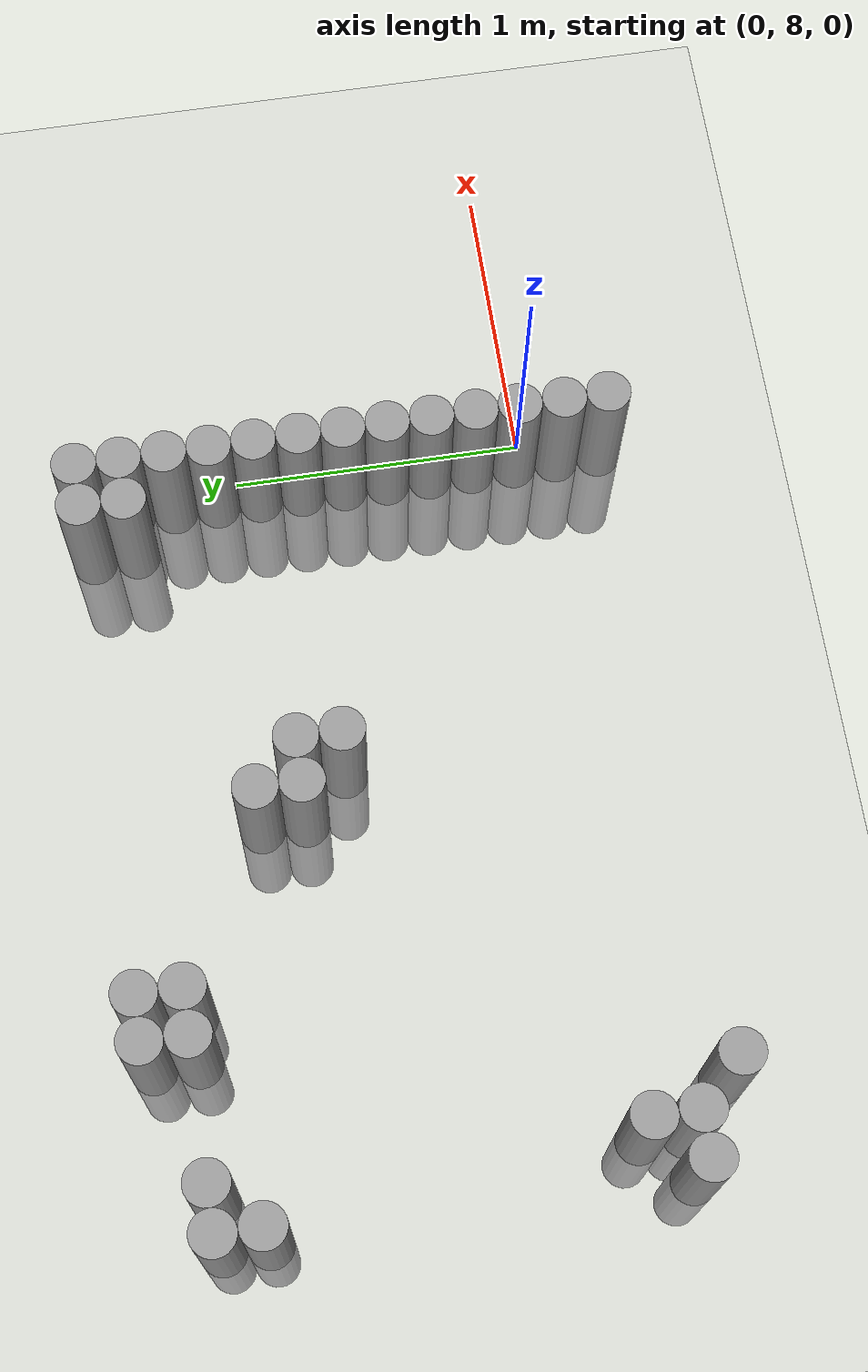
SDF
<sdf version="1.6">
 <world name="default">
  <model name="ground_plane">
   <static>1</static>
   <static>1</static>
   <link name="link">
    <collision name="collision">
     <geometry><plane><normal>0 0 1</normal><size>100 100</size></plane></geometry>
     <surface><friction><ode><mu>100</mu><mu2>50</mu2></ode></friction></surface>
    </collision>
    <visual name="visual">
     <cast_shadows>0</cast_shadows>
     <geometry><plane><normal>0 0 1</normal><size>100 100</size></plane></geometry>
     <material>
      <script><uri>file://media/materials/scripts/gazebo.material</uri><name>Gazebo/Grey</name></script>
     </material>
    </visual>
   </link>
  </model>
  <model name="unit_cylinder_171">
   <static>1</static>
   <pose>-2.625000 7.875000 0.000000 0.000000 0.000000 0.000000</pose>
   <link name="link">
    <inertial>
     <mass>1</mass>
     <inertia><ixx>0.145833</ixx><ixy>0</ixy><ixz>0</ixz><iyy>0.145833</iyy><iyz>0</iyz><izz>0.125</izz></inertia>
    </inertial>
    <collision name="collision">
     <geometry><cylinder><radius>0.075000</radius><length>1</length></cylinder></geometry>
    </collision>
    <visual name="visual">
     <geometry><cylinder><radius>0.075000</radius><length>1</length></cylinder></geometry>
     <material>
      <script><name>Gazebo/Grey</name><uri>file://media/materials/scripts/gazebo.material</uri></script>
     </material>
    </visual>
   </link>
  </model>
  <model name="unit_cylinder_172">
   <static>1</static>
   <pose>-2.625000 9.225000 0.000000 0.000000 0.000000 0.000000</pose>
   <link name="link">
    <inertial>
     <mass>1</mass>
     <inertia><ixx>0.145833</ixx><ixy>0</ixy><ixz>0</ixz><iyy>0.145833</iyy><iyz>0</iyz><izz>0.125</izz></inertia>
    </inertial>
    <collision name="collision">
     <geometry><cylinder><radius>0.075000</radius><length>1</length></cylinder></geometry>
    </collision>
    <visual name="visual">
     <geometry><cylinder><radius>0.075000</radius><length>1</length></cylinder></geometry>
     <material>
      <script><name>Gazebo/Grey</name><uri>file://media/materials/scripts/gazebo.material</uri></script>
     </material>
    </visual>
   </link>
  </model>
  <model name="unit_cylinder_173">
   <static>1</static>
   <pose>-2.625000 9.375000 0.000000 0.000000 0.000000 0.000000</pose>
   <link name="link">
    <inertial>
     <mass>1</mass>
     <inertia><ixx>0.145833</ixx><ixy>0</ixy><ixz>0</ixz><iyy>0.145833</iyy><iyz>0</iyz><izz>0.125</izz></inertia>
    </inertial>
    <collision name="collision">
     <geometry><cylinder><radius>0.075000</radius><length>1</length></cylinder></geometry>
    </collision>
    <visual name="visual">
     <geometry><cylinder><radius>0.075000</radius><length>1</length></cylinder></geometry>
     <material>
      <script><name>Gazebo/Grey</name><uri>file://media/materials/scripts/gazebo.material</uri></script>
     </material>
    </visual>
   </link>
  </model>
  <model name="unit_cylinder_176">
   <static>1</static>
   <pose>-2.475000 7.875000 0.000000 0.000000 0.000000 0.000000</pose>
   <link name="link">
    <inertial>
     <mass>1</mass>
     <inertia><ixx>0.145833</ixx><ixy>0</ixy><ixz>0</ixz><iyy>0.145833</iyy><iyz>0</iyz><izz>0.125</izz></inertia>
    </inertial>
    <collision name="collision">
     <geometry><cylinder><radius>0.075000</radius><length>1</length></cylinder></geometry>
    </collision>
    <visual name="visual">
     <geometry><cylinder><radius>0.075000</radius><length>1</length></cylinder></geometry>
     <material>
      <script><name>Gazebo/Grey</name><uri>file://media/materials/scripts/gazebo.material</uri></script>
     </material>
    </visual>
   </link>
  </model>
  <model name="unit_cylinder_177">
   <static>1</static>
   <pose>-2.475000 8.025000 0.000000 0.000000 0.000000 0.000000</pose>
   <link name="link">
    <inertial>
     <mass>1</mass>
     <inertia><ixx>0.145833</ixx><ixy>0</ixy><ixz>0</ixz><iyy>0.145833</iyy><iyz>0</iyz><izz>0.125</izz></inertia>
    </inertial>
    <collision name="collision">
     <geometry><cylinder><radius>0.075000</radius><length>1</length></cylinder></geometry>
    </collision>
    <visual name="visual">
     <geometry><cylinder><radius>0.075000</radius><length>1</length></cylinder></geometry>
     <material>
      <script><name>Gazebo/Grey</name><uri>file://media/materials/scripts/gazebo.material</uri></script>
     </material>
    </visual>
   </link>
  </model>
  <model name="unit_cylinder_178">
   <static>1</static>
   <pose>-2.475000 9.375000 0.000000 0.000000 0.000000 0.000000</pose>
   <link name="link">
    <inertial>
     <mass>1</mass>
     <inertia><ixx>0.145833</ixx><ixy>0</ixy><ixz>0</ixz><iyy>0.145833</iyy><iyz>0</iyz><izz>0.125</izz></inertia>
    </inertial>
    <collision name="collision">
     <geometry><cylinder><radius>0.075000</radius><length>1</length></cylinder></geometry>
    </collision>
    <visual name="visual">
     <geometry><cylinder><radius>0.075000</radius><length>1</length></cylinder></geometry>
     <material>
      <script><name>Gazebo/Grey</name><uri>file://media/materials/scripts/gazebo.material</uri></script>
     </material>
    </visual>
   </link>
  </model>
  <model name="unit_cylinder_180">
   <static>1</static>
   <pose>-2.325000 7.725000 0.000000 0.000000 0.000000 0.000000</pose>
   <link name="link">
    <inertial>
     <mass>1</mass>
     <inertia><ixx>0.145833</ixx><ixy>0</ixy><ixz>0</ixz><iyy>0.145833</iyy><iyz>0</iyz><izz>0.125</izz></inertia>
    </inertial>
    <collision name="collision">
     <geometry><cylinder><radius>0.075000</radius><length>1</length></cylinder></geometry>
    </collision>
    <visual name="visual">
     <geometry><cylinder><radius>0.075000</radius><length>1</length></cylinder></geometry>
     <material>
      <script><name>Gazebo/Grey</name><uri>file://media/materials/scripts/gazebo.material</uri></script>
     </material>
    </visual>
   </link>
  </model>
  <model name="unit_cylinder_184">
   <static>1</static>
   <pose>-2.025000 9.375000 0.000000 0.000000 0.000000 0.000000</pose>
   <link name="link">
    <inertial>
     <mass>1</mass>
     <inertia><ixx>0.145833</ixx><ixy>0</ixy><ixz>0</ixz><iyy>0.145833</iyy><iyz>0</iyz><izz>0.125</izz></inertia>
    </inertial>
    <collision name="collision">
     <geometry><cylinder><radius>0.075000</radius><length>1</length></cylinder></geometry>
    </collision>
    <visual name="visual">
     <geometry><cylinder><radius>0.075000</radius><length>1</length></cylinder></geometry>
     <material>
      <script><name>Gazebo/Grey</name><uri>file://media/materials/scripts/gazebo.material</uri></script>
     </material>
    </visual>
   </link>
  </model>
  <model name="unit_cylinder_185">
   <static>1</static>
   <pose>-2.025000 9.525000 0.000000 0.000000 0.000000 0.000000</pose>
   <link name="link">
    <inertial>
     <mass>1</mass>
     <inertia><ixx>0.145833</ixx><ixy>0</ixy><ixz>0</ixz><iyy>0.145833</iyy><iyz>0</iyz><izz>0.125</izz></inertia>
    </inertial>
    <collision name="collision">
     <geometry><cylinder><radius>0.075000</radius><length>1</length></cylinder></geometry>
    </collision>
    <visual name="visual">
     <geometry><cylinder><radius>0.075000</radius><length>1</length></cylinder></geometry>
     <material>
      <script><name>Gazebo/Grey</name><uri>file://media/materials/scripts/gazebo.material</uri></script>
     </material>
    </visual>
   </link>
  </model>
  <model name="unit_cylinder_187">
   <static>1</static>
   <pose>-1.875000 9.375000 0.000000 0.000000 0.000000 0.000000</pose>
   <link name="link">
    <inertial>
     <mass>1</mass>
     <inertia><ixx>0.145833</ixx><ixy>0</ixy><ixz>0</ixz><iyy>0.145833</iyy><iyz>0</iyz><izz>0.125</izz></inertia>
    </inertial>
    <collision name="collision">
     <geometry><cylinder><radius>0.075000</radius><length>1</length></cylinder></geometry>
    </collision>
    <visual name="visual">
     <geometry><cylinder><radius>0.075000</radius><length>1</length></cylinder></geometry>
     <material>
      <script><name>Gazebo/Grey</name><uri>file://media/materials/scripts/gazebo.material</uri></script>
     </material>
    </visual>
   </link>
  </model>
  <model name="unit_cylinder_188">
   <static>1</static>
   <pose>-1.875000 9.525000 0.000000 0.000000 0.000000 0.000000</pose>
   <link name="link">
    <inertial>
     <mass>1</mass>
     <inertia><ixx>0.145833</ixx><ixy>0</ixy><ixz>0</ixz><iyy>0.145833</iyy><iyz>0</iyz><izz>0.125</izz></inertia>
    </inertial>
    <collision name="collision">
     <geometry><cylinder><radius>0.075000</radius><length>1</length></cylinder></geometry>
    </collision>
    <visual name="visual">
     <geometry><cylinder><radius>0.075000</radius><length>1</length></cylinder></geometry>
     <material>
      <script><name>Gazebo/Grey</name><uri>file://media/materials/scripts/gazebo.material</uri></script>
     </material>
    </visual>
   </link>
  </model>
  <model name="unit_cylinder_189">
   <static>1</static>
   <pose>-1.275000 8.925000 0.000000 0.000000 0.000000 0.000000</pose>
   <link name="link">
    <inertial>
     <mass>1</mass>
     <inertia><ixx>0.145833</ixx><ixy>0</ixy><ixz>0</ixz><iyy>0.145833</iyy><iyz>0</iyz><izz>0.125</izz></inertia>
    </inertial>
    <collision name="collision">
     <geometry><cylinder><radius>0.075000</radius><length>1</length></cylinder></geometry>
    </collision>
    <visual name="visual">
     <geometry><cylinder><radius>0.075000</radius><length>1</length></cylinder></geometry>
     <material>
      <script><name>Gazebo/Grey</name><uri>file://media/materials/scripts/gazebo.material</uri></script>
     </material>
    </visual>
   </link>
  </model>
  <model name="unit_cylinder_190">
   <static>1</static>
   <pose>-1.275000 9.075000 0.000000 0.000000 0.000000 0.000000</pose>
   <link name="link">
    <inertial>
     <mass>1</mass>
     <inertia><ixx>0.145833</ixx><ixy>0</ixy><ixz>0</ixz><iyy>0.145833</iyy><iyz>0</iyz><izz>0.125</izz></inertia>
    </inertial>
    <collision name="collision">
     <geometry><cylinder><radius>0.075000</radius><length>1</length></cylinder></geometry>
    </collision>
    <visual name="visual">
     <geometry><cylinder><radius>0.075000</radius><length>1</length></cylinder></geometry>
     <material>
      <script><name>Gazebo/Grey</name><uri>file://media/materials/scripts/gazebo.material</uri></script>
     </material>
    </visual>
   </link>
  </model>
  <model name="unit_cylinder_191">
   <static>1</static>
   <pose>-1.125000 8.775000 0.000000 0.000000 0.000000 0.000000</pose>
   <link name="link">
    <inertial>
     <mass>1</mass>
     <inertia><ixx>0.145833</ixx><ixy>0</ixy><ixz>0</ixz><iyy>0.145833</iyy><iyz>0</iyz><izz>0.125</izz></inertia>
    </inertial>
    <collision name="collision">
     <geometry><cylinder><radius>0.075000</radius><length>1</length></cylinder></geometry>
    </collision>
    <visual name="visual">
     <geometry><cylinder><radius>0.075000</radius><length>1</length></cylinder></geometry>
     <material>
      <script><name>Gazebo/Grey</name><uri>file://media/materials/scripts/gazebo.material</uri></script>
     </material>
    </visual>
   </link>
  </model>
  <model name="unit_cylinder_192">
   <static>1</static>
   <pose>-1.125000 8.925000 0.000000 0.000000 0.000000 0.000000</pose>
   <link name="link">
    <inertial>
     <mass>1</mass>
     <inertia><ixx>0.145833</ixx><ixy>0</ixy><ixz>0</ixz><iyy>0.145833</iyy><iyz>0</iyz><izz>0.125</izz></inertia>
    </inertial>
    <collision name="collision">
     <geometry><cylinder><radius>0.075000</radius><length>1</length></cylinder></geometry>
    </collision>
    <visual name="visual">
     <geometry><cylinder><radius>0.075000</radius><length>1</length></cylinder></geometry>
     <material>
      <script><name>Gazebo/Grey</name><uri>file://media/materials/scripts/gazebo.material</uri></script>
     </material>
    </visual>
   </link>
  </model>
  <model name="unit_cylinder_208">
   <static>1</static>
   <pose>-0.225000 9.375000 0.000000 0.000000 0.000000 0.000000</pose>
   <link name="link">
    <inertial>
     <mass>1</mass>
     <inertia><ixx>0.145833</ixx><ixy>0</ixy><ixz>0</ixz><iyy>0.145833</iyy><iyz>0</iyz><izz>0.125</izz></inertia>
    </inertial>
    <collision name="collision">
     <geometry><cylinder><radius>0.075000</radius><length>1</length></cylinder></geometry>
    </collision>
    <visual name="visual">
     <geometry><cylinder><radius>0.075000</radius><length>1</length></cylinder></geometry>
     <material>
      <script><name>Gazebo/Grey</name><uri>file://media/materials/scripts/gazebo.material</uri></script>
     </material>
    </visual>
   </link>
  </model>
  <model name="unit_cylinder_209">
   <static>1</static>
   <pose>-0.225000 9.525000 0.000000 0.000000 0.000000 0.000000</pose>
   <link name="link">
    <inertial>
     <mass>1</mass>
     <inertia><ixx>0.145833</ixx><ixy>0</ixy><ixz>0</ixz><iyy>0.145833</iyy><iyz>0</iyz><izz>0.125</izz></inertia>
    </inertial>
    <collision name="collision">
     <geometry><cylinder><radius>0.075000</radius><length>1</length></cylinder></geometry>
    </collision>
    <visual name="visual">
     <geometry><cylinder><radius>0.075000</radius><length>1</length></cylinder></geometry>
     <material>
      <script><name>Gazebo/Grey</name><uri>file://media/materials/scripts/gazebo.material</uri></script>
     </material>
    </visual>
   </link>
  </model>
  <model name="unit_cylinder_227">
   <static>1</static>
   <pose>-0.075000 7.725000 0.000000 0.000000 0.000000 0.000000</pose>
   <link name="link">
    <inertial>
     <mass>1</mass>
     <inertia><ixx>0.145833</ixx><ixy>0</ixy><ixz>0</ixz><iyy>0.145833</iyy><iyz>0</iyz><izz>0.125</izz></inertia>
    </inertial>
    <collision name="collision">
     <geometry><cylinder><radius>0.075000</radius><length>1</length></cylinder></geometry>
    </collision>
    <visual name="visual">
     <geometry><cylinder><radius>0.075000</radius><length>1</length></cylinder></geometry>
     <material>
      <script><name>Gazebo/Grey</name><uri>file://media/materials/scripts/gazebo.material</uri></script>
     </material>
    </visual>
   </link>
  </model>
  <model name="unit_cylinder_228">
   <static>1</static>
   <pose>-0.075000 7.875000 0.000000 0.000000 0.000000 0.000000</pose>
   <link name="link">
    <inertial>
     <mass>1</mass>
     <inertia><ixx>0.145833</ixx><ixy>0</ixy><ixz>0</ixz><iyy>0.145833</iyy><iyz>0</iyz><izz>0.125</izz></inertia>
    </inertial>
    <collision name="collision">
     <geometry><cylinder><radius>0.075000</radius><length>1</length></cylinder></geometry>
    </collision>
    <visual name="visual">
     <geometry><cylinder><radius>0.075000</radius><length>1</length></cylinder></geometry>
     <material>
      <script><name>Gazebo/Grey</name><uri>file://media/materials/scripts/gazebo.material</uri></script>
     </material>
    </visual>
   </link>
  </model>
  <model name="unit_cylinder_229">
   <static>1</static>
   <pose>-0.075000 8.025000 0.000000 0.000000 0.000000 0.000000</pose>
   <link name="link">
    <inertial>
     <mass>1</mass>
     <inertia><ixx>0.145833</ixx><ixy>0</ixy><ixz>0</ixz><iyy>0.145833</iyy><iyz>0</iyz><izz>0.125</izz></inertia>
    </inertial>
    <collision name="collision">
     <geometry><cylinder><radius>0.075000</radius><length>1</length></cylinder></geometry>
    </collision>
    <visual name="visual">
     <geometry><cylinder><radius>0.075000</radius><length>1</length></cylinder></geometry>
     <material>
      <script><name>Gazebo/Grey</name><uri>file://media/materials/scripts/gazebo.material</uri></script>
     </material>
    </visual>
   </link>
  </model>
  <model name="unit_cylinder_230">
   <static>1</static>
   <pose>-0.075000 8.175000 0.000000 0.000000 0.000000 0.000000</pose>
   <link name="link">
    <inertial>
     <mass>1</mass>
     <inertia><ixx>0.145833</ixx><ixy>0</ixy><ixz>0</ixz><iyy>0.145833</iyy><iyz>0</iyz><izz>0.125</izz></inertia>
    </inertial>
    <collision name="collision">
     <geometry><cylinder><radius>0.075000</radius><length>1</length></cylinder></geometry>
    </collision>
    <visual name="visual">
     <geometry><cylinder><radius>0.075000</radius><length>1</length></cylinder></geometry>
     <material>
      <script><name>Gazebo/Grey</name><uri>file://media/materials/scripts/gazebo.material</uri></script>
     </material>
    </visual>
   </link>
  </model>
  <model name="unit_cylinder_231">
   <static>1</static>
   <pose>-0.075000 8.325000 0.000000 0.000000 0.000000 0.000000</pose>
   <link name="link">
    <inertial>
     <mass>1</mass>
     <inertia><ixx>0.145833</ixx><ixy>0</ixy><ixz>0</ixz><iyy>0.145833</iyy><iyz>0</iyz><izz>0.125</izz></inertia>
    </inertial>
    <collision name="collision">
     <geometry><cylinder><radius>0.075000</radius><length>1</length></cylinder></geometry>
    </collision>
    <visual name="visual">
     <geometry><cylinder><radius>0.075000</radius><length>1</length></cylinder></geometry>
     <material>
      <script><name>Gazebo/Grey</name><uri>file://media/materials/scripts/gazebo.material</uri></script>
     </material>
    </visual>
   </link>
  </model>
  <model name="unit_cylinder_232">
   <static>1</static>
   <pose>-0.075000 8.475000 0.000000 0.000000 0.000000 0.000000</pose>
   <link name="link">
    <inertial>
     <mass>1</mass>
     <inertia><ixx>0.145833</ixx><ixy>0</ixy><ixz>0</ixz><iyy>0.145833</iyy><iyz>0</iyz><izz>0.125</izz></inertia>
    </inertial>
    <collision name="collision">
     <geometry><cylinder><radius>0.075000</radius><length>1</length></cylinder></geometry>
    </collision>
    <visual name="visual">
     <geometry><cylinder><radius>0.075000</radius><length>1</length></cylinder></geometry>
     <material>
      <script><name>Gazebo/Grey</name><uri>file://media/materials/scripts/gazebo.material</uri></script>
     </material>
    </visual>
   </link>
  </model>
  <model name="unit_cylinder_233">
   <static>1</static>
   <pose>-0.075000 8.625000 0.000000 0.000000 0.000000 0.000000</pose>
   <link name="link">
    <inertial>
     <mass>1</mass>
     <inertia><ixx>0.145833</ixx><ixy>0</ixy><ixz>0</ixz><iyy>0.145833</iyy><iyz>0</iyz><izz>0.125</izz></inertia>
    </inertial>
    <collision name="collision">
     <geometry><cylinder><radius>0.075000</radius><length>1</length></cylinder></geometry>
    </collision>
    <visual name="visual">
     <geometry><cylinder><radius>0.075000</radius><length>1</length></cylinder></geometry>
     <material>
      <script><name>Gazebo/Grey</name><uri>file://media/materials/scripts/gazebo.material</uri></script>
     </material>
    </visual>
   </link>
  </model>
  <model name="unit_cylinder_234">
   <static>1</static>
   <pose>-0.075000 8.775000 0.000000 0.000000 0.000000 0.000000</pose>
   <link name="link">
    <inertial>
     <mass>1</mass>
     <inertia><ixx>0.145833</ixx><ixy>0</ixy><ixz>0</ixz><iyy>0.145833</iyy><iyz>0</iyz><izz>0.125</izz></inertia>
    </inertial>
    <collision name="collision">
     <geometry><cylinder><radius>0.075000</radius><length>1</length></cylinder></geometry>
    </collision>
    <visual name="visual">
     <geometry><cylinder><radius>0.075000</radius><length>1</length></cylinder></geometry>
     <material>
      <script><name>Gazebo/Grey</name><uri>file://media/materials/scripts/gazebo.material</uri></script>
     </material>
    </visual>
   </link>
  </model>
  <model name="unit_cylinder_235">
   <static>1</static>
   <pose>-0.075000 8.925000 0.000000 0.000000 0.000000 0.000000</pose>
   <link name="link">
    <inertial>
     <mass>1</mass>
     <inertia><ixx>0.145833</ixx><ixy>0</ixy><ixz>0</ixz><iyy>0.145833</iyy><iyz>0</iyz><izz>0.125</izz></inertia>
    </inertial>
    <collision name="collision">
     <geometry><cylinder><radius>0.075000</radius><length>1</length></cylinder></geometry>
    </collision>
    <visual name="visual">
     <geometry><cylinder><radius>0.075000</radius><length>1</length></cylinder></geometry>
     <material>
      <script><name>Gazebo/Grey</name><uri>file://media/materials/scripts/gazebo.material</uri></script>
     </material>
    </visual>
   </link>
  </model>
  <model name="unit_cylinder_236">
   <static>1</static>
   <pose>-0.075000 9.075000 0.000000 0.000000 0.000000 0.000000</pose>
   <link name="link">
    <inertial>
     <mass>1</mass>
     <inertia><ixx>0.145833</ixx><ixy>0</ixy><ixz>0</ixz><iyy>0.145833</iyy><iyz>0</iyz><izz>0.125</izz></inertia>
    </inertial>
    <collision name="collision">
     <geometry><cylinder><radius>0.075000</radius><length>1</length></cylinder></geometry>
    </collision>
    <visual name="visual">
     <geometry><cylinder><radius>0.075000</radius><length>1</length></cylinder></geometry>
     <material>
      <script><name>Gazebo/Grey</name><uri>file://media/materials/scripts/gazebo.material</uri></script>
     </material>
    </visual>
   </link>
  </model>
  <model name="unit_cylinder_237">
   <static>1</static>
   <pose>-0.075000 9.225000 0.000000 0.000000 0.000000 0.000000</pose>
   <link name="link">
    <inertial>
     <mass>1</mass>
     <inertia><ixx>0.145833</ixx><ixy>0</ixy><ixz>0</ixz><iyy>0.145833</iyy><iyz>0</iyz><izz>0.125</izz></inertia>
    </inertial>
    <collision name="collision">
     <geometry><cylinder><radius>0.075000</radius><length>1</length></cylinder></geometry>
    </collision>
    <visual name="visual">
     <geometry><cylinder><radius>0.075000</radius><length>1</length></cylinder></geometry>
     <material>
      <script><name>Gazebo/Grey</name><uri>file://media/materials/scripts/gazebo.material</uri></script>
     </material>
    </visual>
   </link>
  </model>
  <model name="unit_cylinder_238">
   <static>1</static>
   <pose>-0.075000 9.375000 0.000000 0.000000 0.000000 0.000000</pose>
   <link name="link">
    <inertial>
     <mass>1</mass>
     <inertia><ixx>0.145833</ixx><ixy>0</ixy><ixz>0</ixz><iyy>0.145833</iyy><iyz>0</iyz><izz>0.125</izz></inertia>
    </inertial>
    <collision name="collision">
     <geometry><cylinder><radius>0.075000</radius><length>1</length></cylinder></geometry>
    </collision>
    <visual name="visual">
     <geometry><cylinder><radius>0.075000</radius><length>1</length></cylinder></geometry>
     <material>
      <script><name>Gazebo/Grey</name><uri>file://media/materials/scripts/gazebo.material</uri></script>
     </material>
    </visual>
   </link>
  </model>
  <model name="unit_cylinder_239">
   <static>1</static>
   <pose>-0.075000 9.525000 0.000000 0.000000 0.000000 0.000000</pose>
   <link name="link">
    <inertial>
     <mass>1</mass>
     <inertia><ixx>0.145833</ixx><ixy>0</ixy><ixz>0</ixz><iyy>0.145833</iyy><iyz>0</iyz><izz>0.125</izz></inertia>
    </inertial>
    <collision name="collision">
     <geometry><cylinder><radius>0.075000</radius><length>1</length></cylinder></geometry>
    </collision>
    <visual name="visual">
     <geometry><cylinder><radius>0.075000</radius><length>1</length></cylinder></geometry>
     <material>
      <script><name>Gazebo/Grey</name><uri>file://media/materials/scripts/gazebo.material</uri></script>
     </material>
    </visual>
   </link>
  </model>
 </world>
</sdf>
